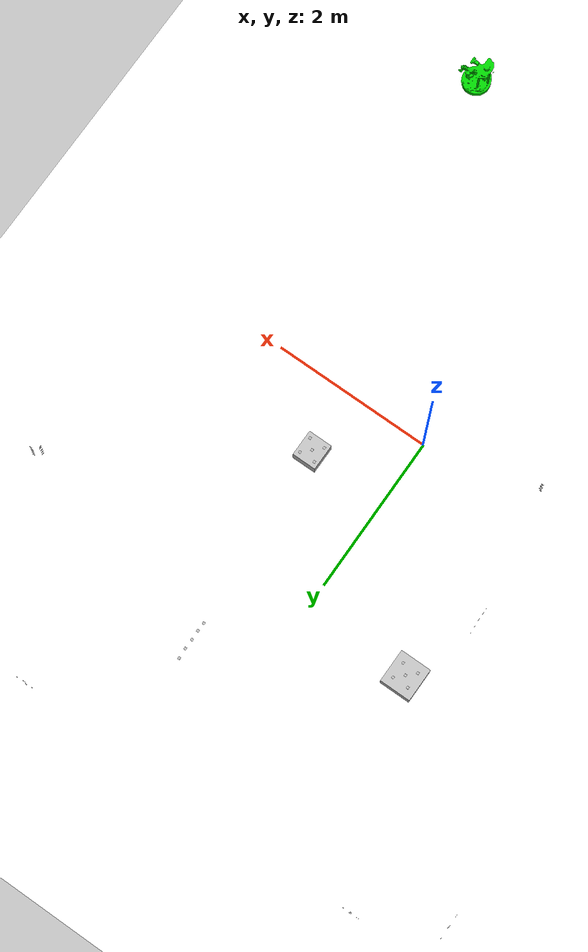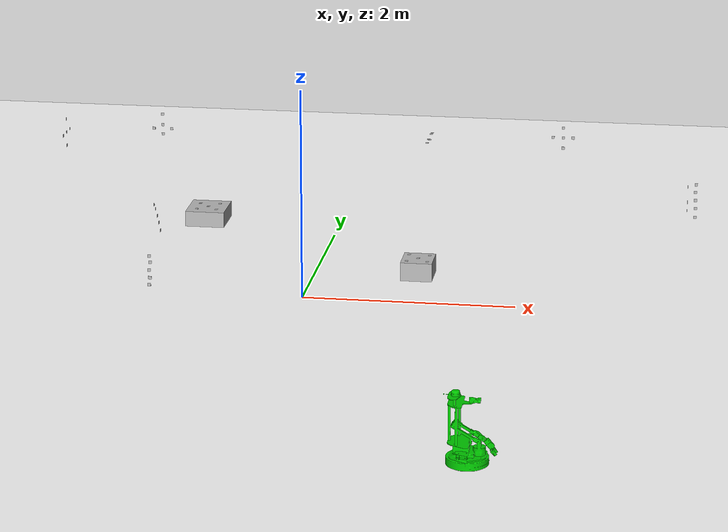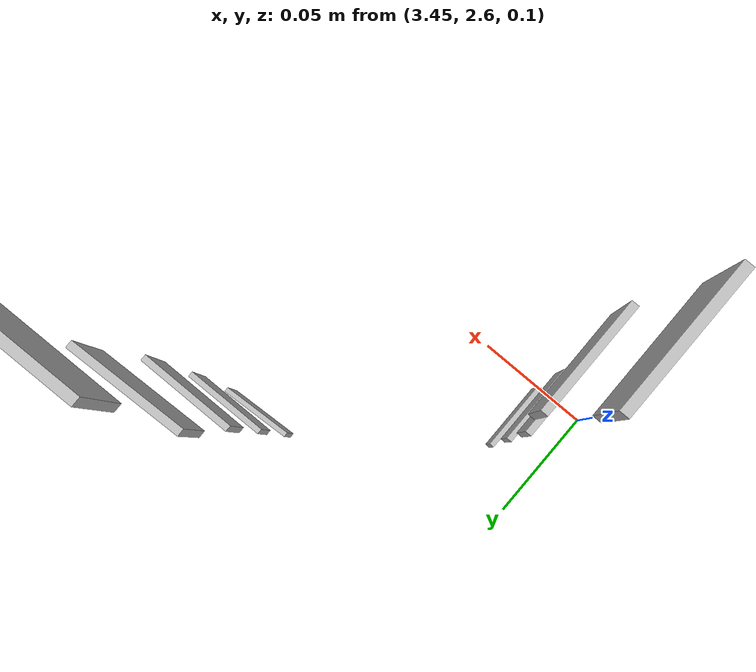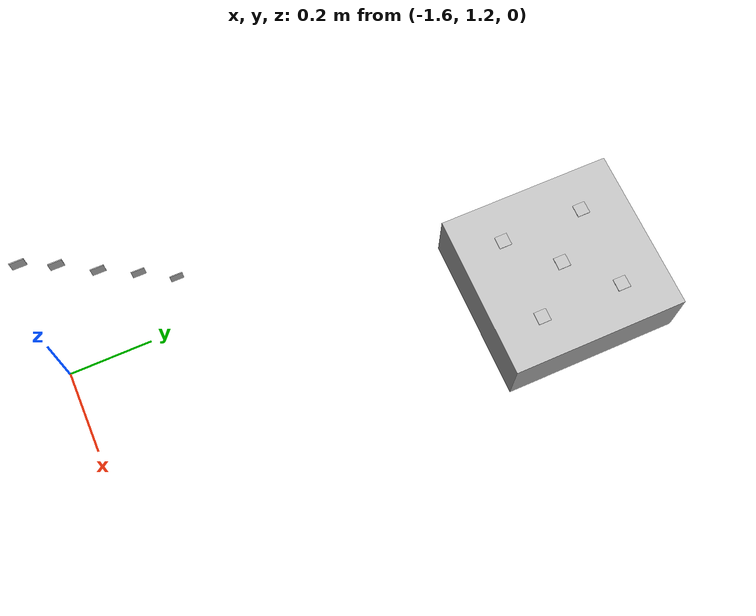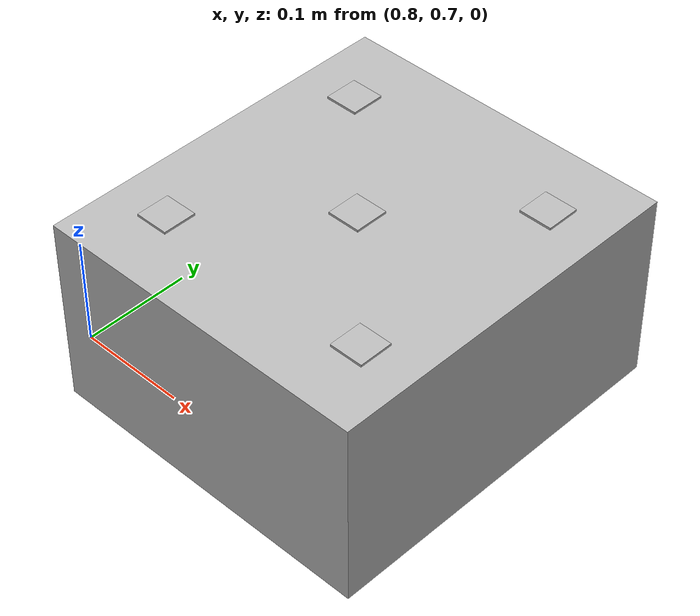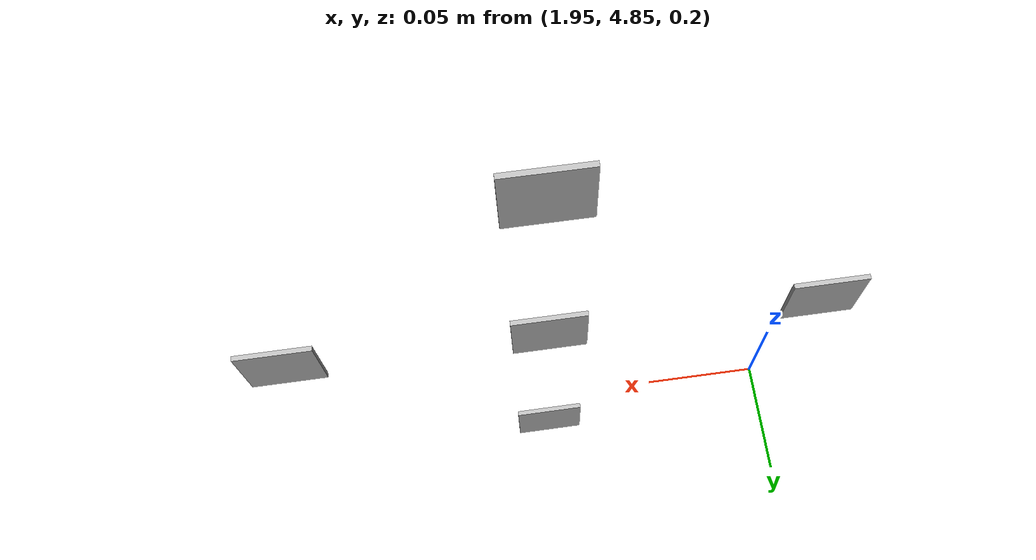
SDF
<sdf version="1.7">
 <world name="v_lab_world">
  <light name="light_top_1" type="point">
   <pose>15 15 20 0 -0 0</pose>
   <diffuse>0.45 0.45 0.45 1</diffuse>
   <specular>0.05 0.05 0.05 1</specular>
   <attenuation>
    <range>100</range>
    <constant>0.2</constant>
    <linear>0.01</linear>
    <quadratic>0.001</quadratic>
   </attenuation>
   <cast_shadows>0</cast_shadows>
   <direction>0 0 -1</direction>
   <spot><inner_angle>0</inner_angle><outer_angle>0</outer_angle><falloff>0</falloff></spot>
  </light>
  <light name="light_top_2" type="point">
   <pose>-15 15 20 0 -0 0</pose>
   <diffuse>0.45 0.45 0.45 1</diffuse>
   <specular>0.05 0.05 0.05 1</specular>
   <attenuation>
    <range>100</range>
    <constant>0.2</constant>
    <linear>0.01</linear>
    <quadratic>0.001</quadratic>
   </attenuation>
   <cast_shadows>0</cast_shadows>
   <direction>0 0 -1</direction>
   <spot><inner_angle>0</inner_angle><outer_angle>0</outer_angle><falloff>0</falloff></spot>
  </light>
  <light name="light_top_3" type="point">
   <pose>15 -15 20 0 -0 0</pose>
   <diffuse>0.45 0.45 0.45 1</diffuse>
   <specular>0.05 0.05 0.05 1</specular>
   <attenuation>
    <range>100</range>
    <constant>0.2</constant>
    <linear>0.01</linear>
    <quadratic>0.001</quadratic>
   </attenuation>
   <cast_shadows>0</cast_shadows>
   <direction>0 0 -1</direction>
   <spot><inner_angle>0</inner_angle><outer_angle>0</outer_angle><falloff>0</falloff></spot>
  </light>
  <light name="light_top_4" type="point">
   <pose>-15 -15 20 0 -0 0</pose>
   <diffuse>0.45 0.45 0.45 1</diffuse>
   <specular>0.05 0.05 0.05 1</specular>
   <attenuation>
    <range>100</range>
    <constant>0.2</constant>
    <linear>0.01</linear>
    <quadratic>0.001</quadratic>
   </attenuation>
   <cast_shadows>0</cast_shadows>
   <direction>0 0 -1</direction>
   <spot><inner_angle>0</inner_angle><outer_angle>0</outer_angle><falloff>0</falloff></spot>
  </light>
  <light name="light_center" type="point">
   <pose>0 0 25 0 -0 0</pose>
   <diffuse>0.35 0.35 0.35 1</diffuse>
   <specular>0.05 0.05 0.05 1</specular>
   <attenuation>
    <range>100</range>
    <constant>0.2</constant>
    <linear>0.01</linear>
    <quadratic>0.001</quadratic>
   </attenuation>
   <cast_shadows>0</cast_shadows>
   <direction>0 0 -1</direction>
   <spot><inner_angle>0</inner_angle><outer_angle>0</outer_angle><falloff>0</falloff></spot>
  </light>
  <model name="ground_plane">
   <static>1</static>
   <link name="link">
    <collision name="collision">
     <geometry><plane><normal>0 0 1</normal><size>100 100</size></plane></geometry>
    </collision>
    <visual name="visual">
     <cast_shadows>0</cast_shadows>
     <geometry><plane><normal>0 0 1</normal><size>100 100</size></plane></geometry>
     <material><ambient>1 1 1 1</ambient><diffuse>1 1 1 1</diffuse><specular>0.1 0.1 0.1 1</specular></material>
    </visual>
   </link>
  </model>
  <physics type="ode">
   <real_time_update_rate>1000</real_time_update_rate>
   <max_step_size>0.001</max_step_size>
   <real_time_factor>1</real_time_factor>
  </physics>
  <scene><ambient>0.45 0.45 0.45 1</ambient><background>0.7 0.7 0.7 1</background><shadows>0</shadows></scene>
  <gravity>0 0 -9.8</gravity>
  <magnetic_field>6e-06 2.3e-05 -4.2e-05</magnetic_field>
  <atmosphere type="adiabatic"/>
  <spherical_coordinates>
   <surface_model>EARTH_WGS84</surface_model>
   <latitude_deg>0</latitude_deg>
   <longitude_deg>0</longitude_deg>
   <elevation>0</elevation>
   <heading_deg>0</heading_deg>
  </spherical_coordinates>
  <model name="unit_box_SMALL">
   <pose>0.988567 0.81624 0.081725 0 -0 0</pose>
   <link name="link">
    <inertial>
     <mass>1</mass>
     <inertia>
      <ixx>1.56e-06</ixx>
      <ixy>0</ixy>
      <ixz>0</ixz>
      <iyy>1.56e-06</iyy>
      <iyz>0</iyz>
      <izz>1.2e-07</izz>
     </inertia>
    </inertial>
    <collision name="collision"><geometry><box><size>0.302974 0.331126 0.18</size></box></geometry></collision>
    <visual name="visual">
     <geometry><box><size>0.302974 0.331126 0.18</size></box></geometry>
     <material>
      <script>
       <uri>model://side_table_1/materials/scripts</uri>
       <uri>model://side_table_1/materials/textures</uri>
       <name>side_table_1</name>
      </script>
     </material>
    </visual>
   </link>
   <static>1</static>
  </model>
  <model name="Apriltag36_11_00000">
   <link name="main">
    <visual name="main_Visual">
     <geometry><box><size>0.03 0.03 0.002</size></box></geometry>
     <material>
      <script>
       <uri>model://Apriltag36_11_00000/materials/scripts</uri>
       <uri>model://Apriltag36_11_00000/materials/textures</uri>
       <name>Apriltag36_11_00000</name>
      </script>
     </material>
    </visual>
   </link>
   <static>1</static>
   <pose>-3.311 4.2 0.3 3.14159 1.57079 3.14159</pose>
  </model>
  <model name="Apriltag36_11_00001">
   <link name="main">
    <visual name="main_Visual">
     <geometry><box><size>0.03 0.03 0.002</size></box></geometry>
     <material>
      <script>
       <uri>model://Apriltag36_11_00001/materials/scripts</uri>
       <uri>model://Apriltag36_11_00001/materials/textures</uri>
       <name>Apriltag36_11_00001</name>
      </script>
     </material>
    </visual>
   </link>
   <static>1</static>
   <pose>-3.311 4.35 0.3 3.14159 1.57079 3.14159</pose>
  </model>
  <model name="Apriltag36_11_00002">
   <link name="main">
    <visual name="main_Visual">
     <geometry><box><size>0.03 0.03 0.002</size></box></geometry>
     <material>
      <script>
       <uri>model://Apriltag36_11_00002/materials/scripts</uri>
       <uri>model://Apriltag36_11_00002/materials/textures</uri>
       <name>Apriltag36_11_00002</name>
      </script>
     </material>
    </visual>
   </link>
   <static>1</static>
   <pose>-3.311 4.5 0.3 3.14159 1.57079 3.14159</pose>
  </model>
  <model name="Apriltag36_11_00003">
   <link name="main">
    <visual name="main_Visual">
     <geometry><box><size>0.03 0.03 0.002</size></box></geometry>
     <material>
      <script>
       <uri>model://Apriltag36_11_00003/materials/scripts</uri>
       <uri>model://Apriltag36_11_00003/materials/textures</uri>
       <name>Apriltag36_11_00003</name>
      </script>
     </material>
    </visual>
   </link>
   <static>1</static>
   <pose>-3.311 4.35 0.45 3.14159 1.57079 3.14159</pose>
  </model>
  <model name="Apriltag36_11_00004">
   <link name="main">
    <visual name="main_Visual">
     <geometry><box><size>0.03 0.03 0.002</size></box></geometry>
     <material>
      <script>
       <uri>model://Apriltag36_11_00004/materials/scripts</uri>
       <uri>model://Apriltag36_11_00004/materials/textures</uri>
       <name>Apriltag36_11_00004</name>
      </script>
     </material>
    </visual>
   </link>
   <static>1</static>
   <pose>-3.311 4.35027 0.152303 3.14159 1.57079 3.14159</pose>
  </model>
  <model name="Apriltag36_11_00005">
   <link name="main">
    <visual name="main_Visual">
     <geometry><box><size>0.03 0.03 0.002</size></box></geometry>
     <material>
      <script>
       <uri>model://Apriltag36_11_00005/materials/scripts</uri>
       <uri>model://Apriltag36_11_00005/materials/textures</uri>
       <name>Apriltag36_11_00005</name>
      </script>
     </material>
    </visual>
   </link>
   <static>1</static>
   <pose>-1.39752 -0.297219 0.157377 -1.5708 0 0</pose>
  </model>
  <model name="Apriltag36_11_00006">
   <link name="main">
    <visual name="main_Visual">
     <geometry><box><size>0.03 0.03 0.002</size></box></geometry>
     <material>
      <script>
       <uri>model://Apriltag36_11_00006/materials/scripts</uri>
       <uri>model://Apriltag36_11_00006/materials/textures</uri>
       <name>Apriltag36_11_00006</name>
      </script>
     </material>
    </visual>
   </link>
   <static>1</static>
   <pose>-1.39456 -0.299267 0.300016 -1.5708 0 0</pose>
  </model>
  <model name="Apriltag36_11_00007">
   <link name="main">
    <visual name="main_Visual">
     <geometry><box><size>0.03 0.03 0.002</size></box></geometry>
     <material>
      <script>
       <uri>model://Apriltag36_11_00007/materials/scripts</uri>
       <uri>model://Apriltag36_11_00007/materials/textures</uri>
       <name>Apriltag36_11_00007</name>
      </script>
     </material>
    </visual>
   </link>
   <static>1</static>
   <pose>-1.39437 -0.296906 0.437513 -1.5708 0 0</pose>
  </model>
  <model name="Apriltag36_11_00008">
   <link name="main">
    <visual name="main_Visual">
     <geometry><box><size>0.03 0.03 0.002</size></box></geometry>
     <material>
      <script>
       <uri>model://Apriltag36_11_00008/materials/scripts</uri>
       <uri>model://Apriltag36_11_00008/materials/textures</uri>
       <name>Apriltag36_11_00008</name>
      </script>
     </material>
    </visual>
   </link>
   <static>1</static>
   <pose>-1.38667 -0.291541 0.375312 -1.5708 0 0</pose>
  </model>
  <model name="Apriltag36_11_00009">
   <link name="main">
    <visual name="main_Visual">
     <geometry><box><size>0.03 0.03 0.002</size></box></geometry>
     <material>
      <script>
       <uri>model://Apriltag36_11_00009/materials/scripts</uri>
       <uri>model://Apriltag36_11_00009/materials/textures</uri>
       <name>Apriltag36_11_00009</name>
      </script>
     </material>
    </visual>
   </link>
   <static>1</static>
   <pose>-1.39055 -0.29692 0.226181 -1.5708 0 0</pose>
  </model>
  <model name="Apriltag36_11_00010">
   <link name="main">
    <visual name="main_Visual">
     <geometry><box><size>0.03 0.03 0.002</size></box></geometry>
     <material>
      <script>
       <uri>model://Apriltag36_11_00010/materials/scripts</uri>
       <uri>model://Apriltag36_11_00010/materials/textures</uri>
       <name>Apriltag36_11_00010</name>
      </script>
     </material>
    </visual>
   </link>
   <static>1</static>
   <pose>-2.44706 4.839 0.25 -1.5708 0 0</pose>
  </model>
  <model name="Apriltag36_11_00011">
   <link name="main">
    <visual name="main_Visual">
     <geometry><box><size>0.03 0.03 0.002</size></box></geometry>
     <material>
      <script>
       <uri>model://Apriltag36_11_00011/materials/scripts</uri>
       <uri>model://Apriltag36_11_00011/materials/textures</uri>
       <name>Apriltag36_11_00011</name>
      </script>
     </material>
    </visual>
   </link>
   <static>1</static>
   <pose>-2.35 4.839 0.290516 -1.5708 0 0</pose>
  </model>
  <model name="Apriltag36_11_00012">
   <link name="main">
    <visual name="main_Visual">
     <geometry><box><size>0.03 0.03 0.002</size></box></geometry>
     <material>
      <script>
       <uri>model://Apriltag36_11_00012/materials/scripts</uri>
       <uri>model://Apriltag36_11_00012/materials/textures</uri>
       <name>Apriltag36_11_00012</name>
      </script>
     </material>
    </visual>
   </link>
   <static>1</static>
   <pose>-2.24981 4.839 0.25 -1.5708 0 0</pose>
  </model>
  <model name="Apriltag36_11_00013">
   <link name="main">
    <visual name="main_Visual">
     <geometry><box><size>0.03 0.03 0.002</size></box></geometry>
     <material>
      <script>
       <uri>model://Apriltag36_11_00013/materials/scripts</uri>
       <uri>model://Apriltag36_11_00013/materials/textures</uri>
       <name>Apriltag36_11_00013</name>
      </script>
     </material>
    </visual>
   </link>
   <static>1</static>
   <pose>-2.35 4.839 0.4101 -1.5708 0 0</pose>
  </model>
  <model name="Apriltag36_11_00014">
   <link name="main">
    <visual name="main_Visual">
     <geometry><box><size>0.03 0.03 0.002</size></box></geometry>
     <material>
      <script>
       <uri>model://Apriltag36_11_00014/materials/scripts</uri>
       <uri>model://Apriltag36_11_00014/materials/textures</uri>
       <name>Apriltag36_11_00014</name>
      </script>
     </material>
    </visual>
   </link>
   <static>1</static>
   <pose>-2.34814 4.839 0.188669 -1.5708 0 0</pose>
  </model>
  <model name="Apriltag36_11_00015">
   <link name="main">
    <visual name="main_Visual">
     <geometry><box><size>0.03 0.03 0.002</size></box></geometry>
     <material>
      <script>
       <uri>model://Apriltag36_11_00015/materials/scripts</uri>
       <uri>model://Apriltag36_11_00015/materials/textures</uri>
       <name>Apriltag36_11_00015</name>
      </script>
     </material>
    </visual>
   </link>
   <static>1</static>
   <pose>1.94037 4.859 0.306886 -1.5708 0 0</pose>
  </model>
  <model name="Apriltag36_11_00016">
   <link name="main">
    <visual name="main_Visual">
     <geometry><box><size>0.03 0.03 0.002</size></box></geometry>
     <material>
      <script>
       <uri>model://Apriltag36_11_00016/materials/scripts</uri>
       <uri>model://Apriltag36_11_00016/materials/textures</uri>
       <name>Apriltag36_11_00016</name>
      </script>
     </material>
    </visual>
   </link>
   <static>1</static>
   <pose>2.05 4.859 0.307177 -1.5708 0 0</pose>
  </model>
  <model name="Apriltag36_11_00017">
   <link name="main">
    <visual name="main_Visual">
     <geometry><box><size>0.03 0.03 0.002</size></box></geometry>
     <material>
      <script>
       <uri>model://Apriltag36_11_00017/materials/scripts</uri>
       <uri>model://Apriltag36_11_00017/materials/textures</uri>
       <name>Apriltag36_11_00017</name>
      </script>
     </material>
    </visual>
   </link>
   <static>1</static>
   <pose>2.1543 4.859 0.308213 -1.5708 0 0</pose>
  </model>
  <model name="Apriltag36_11_00018">
   <link name="main">
    <visual name="main_Visual">
     <geometry><box><size>0.03 0.03 0.002</size></box></geometry>
     <material>
      <script>
       <uri>model://Apriltag36_11_00018/materials/scripts</uri>
       <uri>model://Apriltag36_11_00018/materials/textures</uri>
       <name>Apriltag36_11_00018</name>
      </script>
     </material>
    </visual>
   </link>
   <static>1</static>
   <pose>2.05 4.859 0.416597 -1.5708 0 0</pose>
  </model>
  <model name="Apriltag36_11_00019">
   <link name="main">
    <visual name="main_Visual">
     <geometry><box><size>0.03 0.03 0.002</size></box></geometry>
     <material>
      <script>
       <uri>model://Apriltag36_11_00019/materials/scripts</uri>
       <uri>model://Apriltag36_11_00019/materials/textures</uri>
       <name>Apriltag36_11_00019</name>
      </script>
     </material>
    </visual>
   </link>
   <static>1</static>
   <pose>2.05076 4.859 0.192576 -1.5708 0 0</pose>
  </model>
  <model name="Apriltag36_11_00020">
   <link name="main">
    <visual name="main_Visual">
     <geometry><box><size>0.03 0.03 0.002</size></box></geometry>
     <material>
      <script>
       <uri>model://Apriltag36_11_00020/materials/scripts</uri>
       <uri>model://Apriltag36_11_00020/materials/textures</uri>
       <name>Apriltag36_11_00020</name>
      </script>
     </material>
    </visual>
   </link>
   <static>1</static>
   <pose>0.989 0.816 0.173 0 -0 0</pose>
  </model>
  <model name="Apriltag36_11_00021">
   <link name="main">
    <visual name="main_Visual">
     <geometry><box><size>0.03 0.03 0.002</size></box></geometry>
     <material>
      <script>
       <uri>model://Apriltag36_11_00021/materials/scripts</uri>
       <uri>model://Apriltag36_11_00021/materials/textures</uri>
       <name>Apriltag36_11_00021</name>
      </script>
     </material>
    </visual>
   </link>
   <static>1</static>
   <pose>0.889 0.716 0.173 0 -0 0</pose>
  </model>
  <model name="Apriltag36_11_00022">
   <link name="main">
    <visual name="main_Visual">
     <geometry><box><size>0.03 0.03 0.002</size></box></geometry>
     <material>
      <script>
       <uri>model://Apriltag36_11_00022/materials/scripts</uri>
       <uri>model://Apriltag36_11_00022/materials/textures</uri>
       <name>Apriltag36_11_00022</name>
      </script>
     </material>
    </visual>
   </link>
   <static>1</static>
   <pose>1.089 0.716 0.173 0 -0 0</pose>
  </model>
  <model name="Apriltag36_11_00023">
   <link name="main">
    <visual name="main_Visual">
     <geometry><box><size>0.03 0.03 0.002</size></box></geometry>
     <material>
      <script>
       <uri>model://Apriltag36_11_00023/materials/scripts</uri>
       <uri>model://Apriltag36_11_00023/materials/textures</uri>
       <name>Apriltag36_11_00023</name>
      </script>
     </material>
    </visual>
   </link>
   <static>1</static>
   <pose>0.889 0.916 0.173 0 -0 0</pose>
  </model>
  <model name="Apriltag36_11_00024">
   <link name="main">
    <visual name="main_Visual">
     <geometry><box><size>0.03 0.03 0.002</size></box></geometry>
     <material>
      <script>
       <uri>model://Apriltag36_11_00024/materials/scripts</uri>
       <uri>model://Apriltag36_11_00024/materials/textures</uri>
       <name>Apriltag36_11_00024</name>
      </script>
     </material>
    </visual>
   </link>
   <static>1</static>
   <pose>1.089 0.916 0.173 0 -0 0</pose>
  </model>
  <model name="Apriltag36_11_00025">
   <link name="main">
    <visual name="main_Visual">
     <geometry><box><size>0.03 0.03 0.002</size></box></geometry>
     <material>
      <script>
       <uri>model://Apriltag36_11_00025/materials/scripts</uri>
       <uri>model://Apriltag36_11_00025/materials/textures</uri>
       <name>Apriltag36_11_00025</name>
      </script>
     </material>
    </visual>
   </link>
   <static>1</static>
   <pose>-1.349 2.325 0.146 0 -0 0</pose>
  </model>
  <model name="Apriltag36_11_00026">
   <link name="main">
    <visual name="main_Visual">
     <geometry><box><size>0.03 0.03 0.002</size></box></geometry>
     <material>
      <script>
       <uri>model://Apriltag36_11_00026/materials/scripts</uri>
       <uri>model://Apriltag36_11_00026/materials/textures</uri>
       <name>Apriltag36_11_00026</name>
      </script>
     </material>
    </visual>
   </link>
   <static>1</static>
   <pose>-1.449 2.225 0.146 0 -0 0</pose>
  </model>
  <model name="Apriltag36_11_00027">
   <link name="main">
    <visual name="main_Visual">
     <geometry><box><size>0.03 0.03 0.002</size></box></geometry>
     <material>
      <script>
       <uri>model://Apriltag36_11_00027/materials/scripts</uri>
       <uri>model://Apriltag36_11_00027/materials/textures</uri>
       <name>Apriltag36_11_00027</name>
      </script>
     </material>
    </visual>
   </link>
   <static>1</static>
   <pose>-1.249 2.225 0.146 0 -0 0</pose>
  </model>
  <model name="Apriltag36_11_00028">
   <link name="main">
    <visual name="main_Visual">
     <geometry><box><size>0.03 0.03 0.002</size></box></geometry>
     <material>
      <script>
       <uri>model://Apriltag36_11_00028/materials/scripts</uri>
       <uri>model://Apriltag36_11_00028/materials/textures</uri>
       <name>Apriltag36_11_00028</name>
      </script>
     </material>
    </visual>
   </link>
   <static>1</static>
   <pose>-1.449 2.425 0.146 0 -0 0</pose>
  </model>
  <model name="Apriltag36_11_00029">
   <link name="main">
    <visual name="main_Visual">
     <geometry><box><size>0.03 0.03 0.002</size></box></geometry>
     <material>
      <script>
       <uri>model://Apriltag36_11_00029/materials/scripts</uri>
       <uri>model://Apriltag36_11_00029/materials/textures</uri>
       <name>Apriltag36_11_00029</name>
      </script>
     </material>
    </visual>
   </link>
   <static>1</static>
   <pose>-1.249 2.425 0.146 0 -0 0</pose>
  </model>
  <model name="Apriltag36_11_00030">
   <link name="main">
    <visual name="main_Visual">
     <geometry><box><size>0.03 0.03 0.002</size></box></geometry>
     <material>
      <script>
       <uri>model://Apriltag36_11_00030/materials/scripts</uri>
       <uri>model://Apriltag36_11_00030/materials/textures</uri>
       <name>Apriltag36_11_00030</name>
      </script>
     </material>
    </visual>
   </link>
   <static>1</static>
   <pose>-1.67414 1.51109 0.123753 3.14159 -1.57079 3.14159</pose>
  </model>
  <model name="Apriltag36_11_00031">
   <link name="main">
    <visual name="main_Visual">
     <geometry><box><size>0.03 0.03 0.002</size></box></geometry>
     <material>
      <script>
       <uri>model://Apriltag36_11_00031/materials/scripts</uri>
       <uri>model://Apriltag36_11_00031/materials/textures</uri>
       <name>Apriltag36_11_00031</name>
      </script>
     </material>
    </visual>
   </link>
   <static>1</static>
   <pose>0.775434 3.55579 0.652107 3.14159 0.006317 3.14159</pose>
  </model>
  <model name="Apriltag36_11_00032">
   <link name="main">
    <visual name="main_Visual">
     <geometry><box><size>0.03 0.03 0.002</size></box></geometry>
     <material>
      <script>
       <uri>model://Apriltag36_11_00032/materials/scripts</uri>
       <uri>model://Apriltag36_11_00032/materials/textures</uri>
       <name>Apriltag36_11_00032</name>
      </script>
     </material>
    </visual>
   </link>
   <static>1</static>
   <pose>-1.67031 1.36609 0.31849 3.14159 1.57079 3.14159</pose>
  </model>
  <model name="Apriltag36_11_00033">
   <link name="main">
    <visual name="main_Visual">
     <geometry><box><size>0.03 0.03 0.002</size></box></geometry>
     <material>
      <script>
       <uri>model://Apriltag36_11_00033/materials/scripts</uri>
       <uri>model://Apriltag36_11_00033/materials/textures</uri>
       <name>Apriltag36_11_00033</name>
      </script>
     </material>
    </visual>
   </link>
   <static>1</static>
   <pose>-1.67311 1.43881 0.225154 3.14159 1.57079 3.14159</pose>
  </model>
  <model name="Apriltag36_11_00034">
   <link name="main">
    <visual name="main_Visual">
     <geometry><box><size>0.03 0.03 0.002</size></box></geometry>
     <material>
      <script>
       <uri>model://Apriltag36_11_00034/materials/scripts</uri>
       <uri>model://Apriltag36_11_00034/materials/textures</uri>
       <name>Apriltag36_11_00034</name>
      </script>
     </material>
    </visual>
   </link>
   <static>1</static>
   <pose>0.770381 3.67944 0.632278 -3.09219 4e-06 1.57362</pose>
  </model>
  <model name="Apriltag36_11_00035">
   <link name="main">
    <visual name="main_Visual">
     <geometry><box><size>0.03 0.03 0.002</size></box></geometry>
     <material>
      <script>
       <uri>model://Apriltag36_11_00035/materials/scripts</uri>
       <uri>model://Apriltag36_11_00035/materials/textures</uri>
       <name>Apriltag36_11_00035</name>
      </script>
     </material>
    </visual>
   </link>
   <static>1</static>
   <pose>0.776066 3.31671 0.66331 3.14159 -0.015248 3.14159</pose>
  </model>
  <model name="Apriltag36_11_00036">
   <link name="main">
    <visual name="main_Visual">
     <geometry><box><size>0.03 0.03 0.002</size></box></geometry>
     <material>
      <script>
       <uri>model://Apriltag36_11_00036/materials/scripts</uri>
       <uri>model://Apriltag36_11_00036/materials/textures</uri>
       <name>Apriltag36_11_00036</name>
      </script>
     </material>
    </visual>
   </link>
   <static>1</static>
   <pose>0.775602 3.43141 0.625009 3.14159 -0.036931 3.14159</pose>
  </model>
  <model name="Apriltag36_11_00037">
   <link name="main">
    <visual name="main_Visual">
     <geometry><box><size>0.03 0.03 0.002</size></box></geometry>
     <material>
      <script>
       <uri>model://Apriltag36_11_00037/materials/scripts</uri>
       <uri>model://Apriltag36_11_00037/materials/textures</uri>
       <name>Apriltag36_11_00037</name>
      </script>
     </material>
    </visual>
   </link>
   <static>1</static>
   <pose>-1.67294 1.23672 0.471512 3.14159 1.57079 3.14159</pose>
  </model>
  <model name="Apriltag36_11_00038">
   <link name="main">
    <visual name="main_Visual">
     <geometry><box><size>0.03 0.03 0.002</size></box></geometry>
     <material>
      <script>
       <uri>model://Apriltag36_11_00038/materials/scripts</uri>
       <uri>model://Apriltag36_11_00038/materials/textures</uri>
       <name>Apriltag36_11_00038</name>
      </script>
     </material>
    </visual>
   </link>
   <static>1</static>
   <pose>-1.67318 1.29825 0.40733 3.14159 1.57079 3.14159</pose>
  </model>
  <model name="Apriltag36_11_00039">
   <link name="main">
    <visual name="main_Visual">
     <geometry><box><size>0.03 0.03 0.002</size></box></geometry>
     <material>
      <script>
       <uri>model://Apriltag36_11_00039/materials/scripts</uri>
       <uri>model://Apriltag36_11_00039/materials/textures</uri>
       <name>Apriltag36_11_00039</name>
      </script>
     </material>
    </visual>
   </link>
   <static>1</static>
   <pose>0.774379 3.20969 0.652619 0.099269 -4e-06 -1.5743</pose>
  </model>
  <model name="Apriltag36_11_00040">
   <link name="main">
    <visual name="main_Visual">
     <geometry><box><size>0.03 0.03 0.002</size></box></geometry>
     <material>
      <script>
       <uri>model://Apriltag36_11_00040/materials/scripts</uri>
       <uri>model://Apriltag36_11_00040/materials/textures</uri>
       <name>Apriltag36_11_00040</name>
      </script>
     </material>
    </visual>
   </link>
   <static>1</static>
   <pose>3.55398 2.68402 0.130594 1.60903 -1.57079 -3.13206</pose>
  </model>
  <model name="Apriltag36_11_00041">
   <link name="main">
    <visual name="main_Visual">
     <geometry><box><size>0.03 0.03 0.002</size></box></geometry>
     <material>
      <script>
       <uri>model://Apriltag36_11_00041/materials/scripts</uri>
       <uri>model://Apriltag36_11_00041/materials/textures</uri>
       <name>Apriltag36_11_00041</name>
      </script>
     </material>
    </visual>
   </link>
   <static>1</static>
   <pose>3.55355 2.6835 0.308435 1.57673 -1.57079 3.13805</pose>
  </model>
  <model name="Apriltag36_11_00042">
   <link name="main">
    <visual name="main_Visual">
     <geometry><box><size>0.03 0.03 0.002</size></box></geometry>
     <material>
      <script>
       <uri>model://Apriltag36_11_00042/materials/scripts</uri>
       <uri>model://Apriltag36_11_00042/materials/textures</uri>
       <name>Apriltag36_11_00042</name>
      </script>
     </material>
    </visual>
   </link>
   <static>1</static>
   <pose>3.5557 2.68356 0.47078 1.58012 -1.57079 -3.14157</pose>
  </model>
  <model name="Apriltag36_11_00043">
   <link name="main">
    <visual name="main_Visual">
     <geometry><box><size>0.03 0.03 0.002</size></box></geometry>
     <material>
      <script>
       <uri>model://Apriltag36_11_00043/materials/scripts</uri>
       <uri>model://Apriltag36_11_00043/materials/textures</uri>
       <name>Apriltag36_11_00043</name>
      </script>
     </material>
    </visual>
   </link>
   <static>1</static>
   <pose>3.5544 2.68372 0.222885 1.57378 -1.57079 -3.13861</pose>
  </model>
  <model name="Apriltag36_11_00044">
   <link name="main">
    <visual name="main_Visual">
     <geometry><box><size>0.03 0.03 0.002</size></box></geometry>
     <material>
      <script>
       <uri>model://Apriltag36_11_00044/materials/scripts</uri>
       <uri>model://Apriltag36_11_00044/materials/textures</uri>
       <name>Apriltag36_11_00044</name>
      </script>
     </material>
    </visual>
   </link>
   <static>1</static>
   <pose>3.55146 2.68498 0.390978 1.60001 -1.57079 -3.14055</pose>
  </model>
  <model name="Apriltag36_11_00045">
   <link name="main">
    <visual name="main_Visual">
     <geometry><box><size>0.03 0.03 0.002</size></box></geometry>
     <material>
      <script>
       <uri>model://Apriltag36_11_00045/materials/scripts</uri>
       <uri>model://Apriltag36_11_00045/materials/textures</uri>
       <name>Apriltag36_11_00045</name>
      </script>
     </material>
    </visual>
   </link>
   <static>1</static>
   <pose>3.47349 2.61913 0.135681 3.14159 -1.57079 3.14159</pose>
  </model>
  <model name="Apriltag36_11_00046">
   <link name="main">
    <visual name="main_Visual">
     <geometry><box><size>0.03 0.03 0.002</size></box></geometry>
     <material>
      <script>
       <uri>model://Apriltag36_11_00046/materials/scripts</uri>
       <uri>model://Apriltag36_11_00046/materials/textures</uri>
       <name>Apriltag36_11_00046</name>
      </script>
     </material>
    </visual>
   </link>
   <static>1</static>
   <pose>3.4757 2.61764 0.306627 3.14159 -1.57079 3.14159</pose>
  </model>
  <model name="Apriltag36_11_00047">
   <link name="main">
    <visual name="main_Visual">
     <geometry><box><size>0.03 0.03 0.002</size></box></geometry>
     <material>
      <script>
       <uri>model://Apriltag36_11_00047/materials/scripts</uri>
       <uri>model://Apriltag36_11_00047/materials/textures</uri>
       <name>Apriltag36_11_00047</name>
      </script>
     </material>
    </visual>
   </link>
   <static>1</static>
   <pose>3.47629 2.61703 0.469643 3.14159 -1.57079 3.14159</pose>
  </model>
  <model name="Apriltag36_11_00048">
   <link name="main">
    <visual name="main_Visual">
     <geometry><box><size>0.03 0.03 0.002</size></box></geometry>
     <material>
      <script>
       <uri>model://Apriltag36_11_00048/materials/scripts</uri>
       <uri>model://Apriltag36_11_00048/materials/textures</uri>
       <name>Apriltag36_11_00048</name>
      </script>
     </material>
    </visual>
   </link>
   <static>1</static>
   <pose>3.47414 2.61768 0.221695 3.14159 -1.57079 3.14159</pose>
  </model>
  <model name="Apriltag36_11_00049">
   <link name="main">
    <visual name="main_Visual">
     <geometry><box><size>0.03 0.03 0.002</size></box></geometry>
     <material>
      <script>
       <uri>model://Apriltag36_11_00049/materials/scripts</uri>
       <uri>model://Apriltag36_11_00049/materials/textures</uri>
       <name>Apriltag36_11_00049</name>
      </script>
     </material>
    </visual>
   </link>
   <static>1</static>
   <pose>3.48099 2.61788 0.391155 3.14159 -1.57079 3.14159</pose>
  </model>
  <model name="unit_box_SMALL_clone">
   <pose>-1.34943 2.32543 0.054799 0 -0 0</pose>
   <link name="link">
    <inertial>
     <mass>1</mass>
     <inertia>
      <ixx>1.56e-06</ixx>
      <ixy>0</ixy>
      <ixz>0</ixz>
      <iyy>1.56e-06</iyy>
      <iyz>0</iyz>
      <izz>1.2e-07</izz>
     </inertia>
    </inertial>
    <collision name="collision"><geometry><box><size>0.393464 0.419397 0.18</size></box></geometry></collision>
    <visual name="visual">
     <geometry><box><size>0.393464 0.419397 0.18</size></box></geometry>
     <material>
      <script>
       <uri>model://side_table_1/materials/scripts</uri>
       <uri>model://side_table_1/materials/textures</uri>
       <name>side_table_1</name>
      </script>
     </material>
    </visual>
   </link>
   <static>1</static>
  </model>
  <model name="robot_obstacle">
   <static>0</static>
   <pose>2 -4 0 0 -0 0</pose>
   <link name="body">
    <gravity>0</gravity>
    <kinematic>1</kinematic>
    <inertial>
     <mass>1</mass>
     <inertia><ixx>0.1</ixx><ixy>0</ixy><ixz>0</ixz><iyy>0.1</iyy><iyz>0</iyz><izz>0.1</izz></inertia>
    </inertial>
    <collision name="collision">
     <geometry>
      <mesh>
       <uri>/home/humans/base_seq_opt_multi_dynamic_env_SIM/src/human_control/meshes/locobot_intero_sleep_position_reduced.stl</uri>
       <scale>0.001 0.001 0.001</scale>
      </mesh>
     </geometry>
    </collision>
    <visual name="visual">
     <geometry>
      <mesh>
       <uri>/home/humans/base_seq_opt_multi_dynamic_env_SIM/src/human_control/meshes/locobot_intero_sleep_position_reduced.stl</uri>
       <scale>0.001 0.001 0.001</scale>
      </mesh>
     </geometry>
     <material>
      <ambient>0 0.5 0 1</ambient>
      <diffuse>0 0.8 0 1</diffuse>
      <specular>0.1 0.3 0.1 1</specular>
     </material>
    </visual>
   </link>
   <plugin name="robot_control" filename="librobot_control_plugin.so">
    <collision_radius>0.4</collision_radius>
   </plugin>
  </model>
 </world>
</sdf>
